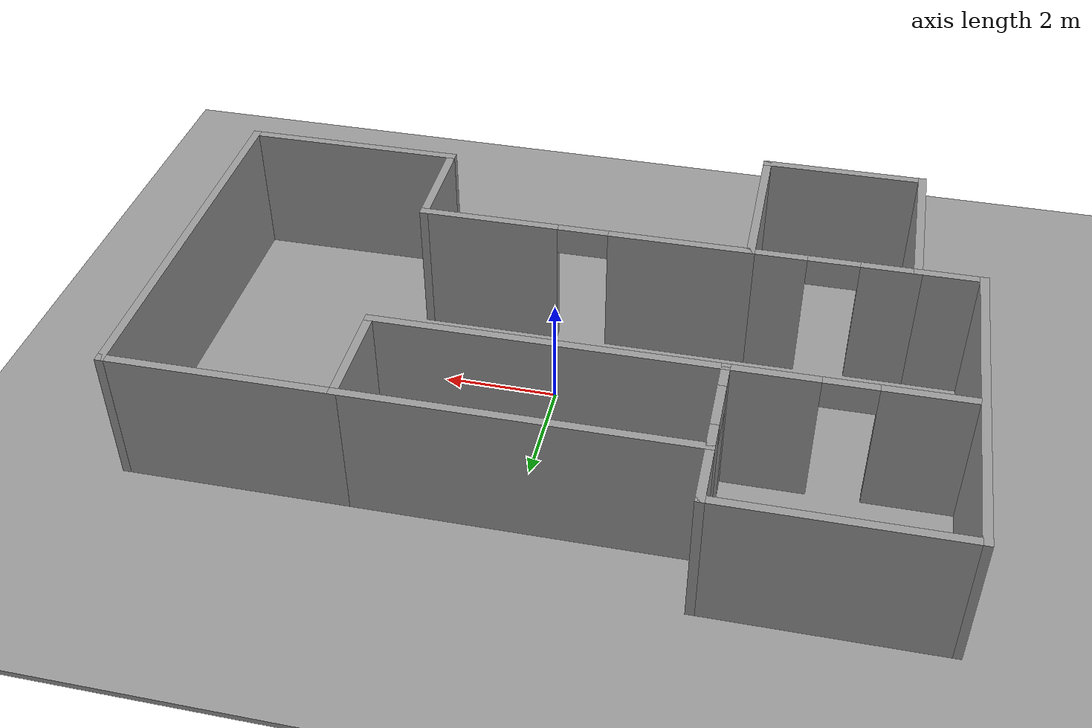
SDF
<sdf version="1.6">
 <world name="default">
  <model name="ground_plane">
   <static>1</static>
   <link name="link">
    <collision name="collision">
     <geometry><plane><normal>0 0 1</normal><size>100 100</size></plane></geometry>
     <surface><friction><ode><mu>100</mu><mu2>50</mu2></ode></friction></surface>
    </collision>
    <visual name="visual">
     <cast_shadows>0</cast_shadows>
     <geometry><plane><normal>0 0 1</normal><size>100 100</size></plane></geometry>
     <material>
      <script><uri>file://media/materials/scripts/gazebo.material</uri><name>Gazebo/Grey</name></script>
     </material>
    </visual>
   </link>
  </model>
  <light name="sun" type="directional">
   <pose>0 0 10 0 -0 0</pose>
   <diffuse>0.8 0.8 0.8 1</diffuse>
   <specular>0.2 0.2 0.2 1</specular>
   <attenuation>
    <range>1000</range>
    <constant>0.9</constant>
    <linear>0.01</linear>
    <quadratic>0.001</quadratic>
   </attenuation>
   <direction>-0.5 0.1 -0.9</direction>
  </light>
  <gravity>0 0 -9.8</gravity>
  <magnetic_field>6e-06 2.3e-05 -4.2e-05</magnetic_field>
  <atmosphere type="adiabatic"/>
  <physics name="default_physics" default="0" type="ode">
   <max_step_size>0.001</max_step_size>
   <real_time_factor>1</real_time_factor>
   <real_time_update_rate>1000</real_time_update_rate>
  </physics>
  <scene><ambient>0.4 0.4 0.4 1</ambient><background>0.7 0.7 0.7 1</background><shadows>1</shadows></scene>
  <spherical_coordinates>
   <surface_model>EARTH_WGS84</surface_model>
   <latitude_deg>0</latitude_deg>
   <longitude_deg>0</longitude_deg>
   <elevation>0</elevation>
   <heading_deg>0</heading_deg>
  </spherical_coordinates>
  <model name="base">
   <pose>-0.21186 -0.010356 0 0 -0 0.007751</pose>
   <link name="Wall_10">
    <collision name="Wall_10_Collision">
     <geometry><box><size>4 0.15 2.5</size></box></geometry>
     <pose>0 0 1.25 0 -0 0</pose>
    </collision>
    <visual name="Wall_10_Visual">
     <pose>0 0 1.25 0 -0 0</pose>
     <geometry><box><size>4 0.15 2.5</size></box></geometry>
     <material>
      <script><uri>file://media/materials/scripts/gazebo.material</uri><name>Gazebo/Grey</name></script>
      <ambient>1 1 1 1</ambient>
     </material>
     <meta><layer>0</layer></meta>
    </visual>
    <pose>4.92011 3.375 0 0 -0 3.14159</pose>
   </link>
   <link name="Wall_11">
    <collision name="Wall_11_Collision">
     <geometry><box><size>2 0.15 2.5</size></box></geometry>
     <pose>0 0 1.25 0 -0 0</pose>
    </collision>
    <visual name="Wall_11_Visual">
     <pose>0 0 1.25 0 -0 0</pose>
     <geometry><box><size>2 0.15 2.5</size></box></geometry>
     <material>
      <script><uri>file://media/materials/scripts/gazebo.material</uri><name>Gazebo/Grey</name></script>
      <ambient>1 1 1 1</ambient>
     </material>
     <meta><layer>0</layer></meta>
    </visual>
    <pose>2.99511 2.45 0 0 0 -1.5708</pose>
   </link>
   <link name="Wall_12">
    <collision name="Wall_12_Collision">
     <geometry><box><size>6 0.15 2.5</size></box></geometry>
     <pose>0 0 1.25 0 -0 0</pose>
    </collision>
    <visual name="Wall_12_Visual">
     <pose>0 0 1.25 0 -0 0</pose>
     <geometry><box><size>6 0.15 2.5</size></box></geometry>
     <material>
      <script><uri>file://media/materials/scripts/gazebo.material</uri><name>Gazebo/Grey</name></script>
      <ambient>1 1 1 1</ambient>
     </material>
     <meta><layer>0</layer></meta>
    </visual>
    <pose>0.070114 1.525 0 0 -0 3.14159</pose>
   </link>
   <link name="Wall_18">
    <collision name="Wall_18_Collision">
     <geometry><box><size>2 0.15 2.5</size></box></geometry>
     <pose>0 0 1.25 0 -0 0</pose>
    </collision>
    <visual name="Wall_18_Visual">
     <pose>0 0 1.25 0 -0 0</pose>
     <geometry><box><size>2 0.15 2.5</size></box></geometry>
     <material>
      <script><uri>file://media/materials/scripts/gazebo.material</uri><name>Gazebo/Grey</name></script>
      <ambient>1 1 1 1</ambient>
     </material>
     <meta><layer>0</layer></meta>
    </visual>
    <pose>2.95489 -2.55 0 0 -0 1.5708</pose>
   </link>
   <link name="Wall_19">
    <pose>0.029886 -1.625 0 0 -0 3.14159</pose>
    <visual name="Wall_19_Visual_0">
     <pose>-1.73932 0 1.25 0 -0 0</pose>
     <geometry><box><size>2.52135 0.15 2.5</size></box></geometry>
     <material>
      <script><uri>file://media/materials/scripts/gazebo.material</uri><name>Gazebo/Grey</name></script>
      <ambient>1 1 1 1</ambient>
     </material>
     <meta><layer>0</layer></meta>
    </visual>
    <collision name="Wall_19_Collision_0">
     <geometry><box><size>2.52135 0.15 2.5</size></box></geometry>
     <pose>-1.73932 0 1.25 0 -0 0</pose>
    </collision>
    <visual name="Wall_19_Visual_1">
     <pose>1.71068 0 1.25 0 -0 0</pose>
     <geometry><box><size>2.57865 0.15 2.5</size></box></geometry>
     <material>
      <script><uri>file://media/materials/scripts/gazebo.material</uri><name>Gazebo/Grey</name></script>
      <ambient>1 1 1 1</ambient>
     </material>
     <meta><layer>0</layer></meta>
    </visual>
    <collision name="Wall_19_Collision_1">
     <geometry><box><size>2.57865 0.15 2.5</size></box></geometry>
     <pose>1.71068 0 1.25 0 -0 0</pose>
    </collision>
    <visual name="Wall_19_Visual_2">
     <pose>-0.028646 0 2.25 0 -0 0</pose>
     <geometry><box><size>0.9 0.15 0.5</size></box></geometry>
     <material>
      <script><uri>file://media/materials/scripts/gazebo.material</uri><name>Gazebo/Grey</name></script>
      <ambient>1 1 1 1</ambient>
     </material>
     <meta><layer>0</layer></meta>
    </visual>
    <collision name="Wall_19_Collision_2">
     <geometry><box><size>0.9 0.15 0.5</size></box></geometry>
     <pose>-0.028646 0 2.25 0 -0 0</pose>
    </collision>
   </link>
   <link name="Wall_20">
    <collision name="Wall_20_Collision">
     <geometry><box><size>3 0.15 2.5</size></box></geometry>
     <pose>0 0 1.25 0 -0 0</pose>
    </collision>
    <visual name="Wall_20_Visual">
     <pose>0 0 1.25 0 -0 0</pose>
     <geometry><box><size>3 0.15 2.5</size></box></geometry>
     <material>
      <script><uri>file://media/materials/scripts/gazebo.material</uri><name>Gazebo/Grey</name></script>
      <ambient>1 1 1 1</ambient>
     </material>
     <meta><layer>0</layer></meta>
    </visual>
    <pose>-2.89511 -3.05 0 0 0 -1.5708</pose>
   </link>
   <link name="Wall_21">
    <collision name="Wall_21_Collision">
     <geometry><box><size>3 0.15 2.5</size></box></geometry>
     <pose>0 0 1.25 0 -0 0</pose>
    </collision>
    <visual name="Wall_21_Visual">
     <pose>0 0 1.25 0 -0 0</pose>
     <geometry><box><size>3 0.15 2.5</size></box></geometry>
     <material>
      <script><uri>file://media/materials/scripts/gazebo.material</uri><name>Gazebo/Grey</name></script>
      <ambient>1 1 1 1</ambient>
     </material>
     <meta><layer>0</layer></meta>
    </visual>
    <pose>-4.32011 -4.475 0 0 -0 3.14159</pose>
   </link>
   <link name="Wall_22">
    <collision name="Wall_22_Collision">
     <geometry><box><size>3 0.15 2.5</size></box></geometry>
     <pose>0 0 1.25 0 -0 0</pose>
    </collision>
    <visual name="Wall_22_Visual">
     <pose>0 0 1.25 0 -0 0</pose>
     <geometry><box><size>3 0.15 2.5</size></box></geometry>
     <material>
      <script><uri>file://media/materials/scripts/gazebo.material</uri><name>Gazebo/Grey</name></script>
      <ambient>1 1 1 1</ambient>
     </material>
     <meta><layer>0</layer></meta>
    </visual>
    <pose>-5.74511 -3.05 0 0 -0 1.5708</pose>
   </link>
   <link name="Wall_23">
    <collision name="Wall_23_Collision">
     <geometry><box><size>1.25 0.15 2.5</size></box></geometry>
     <pose>0 0 1.25 0 -0 0</pose>
    </collision>
    <visual name="Wall_23_Visual">
     <pose>0 0 1.25 0 -0 0</pose>
     <geometry><box><size>1.25 0.15 2.5</size></box></geometry>
     <material>
      <script><uri>file://media/materials/scripts/gazebo.material</uri><name>Gazebo/Grey</name></script>
      <ambient>1 1 1 1</ambient>
     </material>
     <meta><layer>0</layer></meta>
    </visual>
    <pose>-6.29511 -1.625 0 0 -0 3.14159</pose>
   </link>
   <link name="Wall_24">
    <collision name="Wall_24_Collision">
     <geometry><box><size>6.25 0.15 2.5</size></box></geometry>
     <pose>0 0 1.25 0 -0 0</pose>
    </collision>
    <visual name="Wall_24_Visual">
     <pose>0 0 1.25 0 -0 0</pose>
     <geometry><box><size>6.25 0.15 2.5</size></box></geometry>
     <material>
      <script><uri>file://media/materials/scripts/gazebo.material</uri><name>Gazebo/Grey</name></script>
      <ambient>1 1 1 1</ambient>
     </material>
     <meta><layer>0</layer></meta>
    </visual>
    <pose>-6.84511 1.425 0 0 -0 1.5708</pose>
   </link>
   <link name="Wall_28">
    <pose>-4.32011 -1.625 0 0 -0 0</pose>
    <visual name="Wall_28_Visual_0">
     <pose>-0.978057 0 1.25 0 -0 0</pose>
     <geometry><box><size>1.04389 0.15 2.5</size></box></geometry>
     <material>
      <script><uri>file://media/materials/scripts/gazebo.material</uri><name>Gazebo/Grey</name></script>
      <ambient>1 1 1 1</ambient>
     </material>
     <meta><layer>0</layer></meta>
    </visual>
    <collision name="Wall_28_Collision_0">
     <geometry><box><size>1.04389 0.15 2.5</size></box></geometry>
     <pose>-0.978057 0 1.25 0 -0 0</pose>
    </collision>
    <visual name="Wall_28_Visual_1">
     <pose>0.971943 0 1.25 0 -0 0</pose>
     <geometry><box><size>1.05611 0.15 2.5</size></box></geometry>
     <material>
      <script><uri>file://media/materials/scripts/gazebo.material</uri><name>Gazebo/Grey</name></script>
      <ambient>1 1 1 1</ambient>
     </material>
     <meta><layer>0</layer></meta>
    </visual>
    <collision name="Wall_28_Collision_1">
     <geometry><box><size>1.05611 0.15 2.5</size></box></geometry>
     <pose>0.971943 0 1.25 0 -0 0</pose>
    </collision>
    <visual name="Wall_28_Visual_2">
     <pose>-0.006113 0 2.25 0 -0 0</pose>
     <geometry><box><size>0.9 0.15 0.5</size></box></geometry>
     <material>
      <script><uri>file://media/materials/scripts/gazebo.material</uri><name>Gazebo/Grey</name></script>
      <ambient>1 1 1 1</ambient>
     </material>
     <meta><layer>0</layer></meta>
    </visual>
    <collision name="Wall_28_Collision_2">
     <geometry><box><size>0.9 0.15 0.5</size></box></geometry>
     <pose>-0.006113 0 2.25 0 -0 0</pose>
    </collision>
   </link>
   <link name="Wall_32">
    <pose>-2.85489 2.45 0 0 -0 1.5708</pose>
    <visual name="Wall_32_Visual_0">
     <pose>-0.730805 0 1.25 0 -0 0</pose>
     <geometry><box><size>0.53839 0.15 2.5</size></box></geometry>
     <material>
      <script><uri>file://media/materials/scripts/gazebo.material</uri><name>Gazebo/Grey</name></script>
      <ambient>1 1 1 1</ambient>
     </material>
     <meta><layer>0</layer></meta>
    </visual>
    <collision name="Wall_32_Collision_0">
     <geometry><box><size>0.53839 0.15 2.5</size></box></geometry>
     <pose>-0.730805 0 1.25 0 -0 0</pose>
    </collision>
    <visual name="Wall_32_Visual_1">
     <pose>0.719195 0 1.25 0 -0 0</pose>
     <geometry><box><size>0.56161 0.15 2.5</size></box></geometry>
     <material>
      <script><uri>file://media/materials/scripts/gazebo.material</uri><name>Gazebo/Grey</name></script>
      <ambient>1 1 1 1</ambient>
     </material>
     <meta><layer>0</layer></meta>
    </visual>
    <collision name="Wall_32_Collision_1">
     <geometry><box><size>0.56161 0.15 2.5</size></box></geometry>
     <pose>0.719195 0 1.25 0 -0 0</pose>
    </collision>
    <visual name="Wall_32_Visual_2">
     <pose>-0.01161 0 2.25 0 -0 0</pose>
     <geometry><box><size>0.9 0.15 0.5</size></box></geometry>
     <material>
      <script><uri>file://media/materials/scripts/gazebo.material</uri><name>Gazebo/Grey</name></script>
      <ambient>1 1 1 1</ambient>
     </material>
     <meta><layer>0</layer></meta>
    </visual>
    <collision name="Wall_32_Collision_2">
     <geometry><box><size>0.9 0.15 0.5</size></box></geometry>
     <pose>-0.01161 0 2.25 0 -0 0</pose>
    </collision>
   </link>
   <link name="Wall_33">
    <collision name="Wall_33_Collision">
     <geometry><box><size>6 0.15 2.5</size></box></geometry>
     <pose>0 0 1.25 0 -0 0</pose>
    </collision>
    <visual name="Wall_33_Visual">
     <pose>0 0 1.25 0 -0 0</pose>
     <geometry><box><size>6 0.15 2.5</size></box></geometry>
     <material>
      <script><uri>file://media/materials/scripts/gazebo.material</uri><name>Gazebo/Grey</name></script>
      <ambient>1 1 1 1</ambient>
     </material>
     <meta><layer>0</layer></meta>
    </visual>
    <pose>0.070114 3.375 0 0 -0 0</pose>
   </link>
   <link name="Wall_35">
    <collision name="Wall_35_Collision">
     <geometry><box><size>1.25 0.15 2.5</size></box></geometry>
     <pose>0 0 1.25 0 -0 0</pose>
    </collision>
    <visual name="Wall_35_Visual">
     <pose>0 0 1.25 0 -0 0</pose>
     <geometry><box><size>1.25 0.15 2.5</size></box></geometry>
     <material>
      <script><uri>file://media/materials/scripts/gazebo.material</uri><name>Gazebo/Grey</name></script>
      <ambient>1 1 1 1</ambient>
     </material>
     <meta><layer>0</layer></meta>
    </visual>
    <pose>-2.85489 3.925 0 0 -0 1.5708</pose>
   </link>
   <link name="Wall_36">
    <collision name="Wall_36_Collision">
     <geometry><box><size>4 0.15 2.5</size></box></geometry>
     <pose>0 0 1.25 0 -0 0</pose>
    </collision>
    <visual name="Wall_36_Visual">
     <pose>0 0 1.25 0 -0 0</pose>
     <geometry><box><size>4 0.15 2.5</size></box></geometry>
     <material>
      <script><uri>file://media/materials/scripts/gazebo.material</uri><name>Gazebo/Grey</name></script>
      <ambient>1 1 1 1</ambient>
     </material>
     <meta><layer>0</layer></meta>
    </visual>
    <pose>-4.77989 4.475 0 0 -0 3.14159</pose>
   </link>
   <link name="Wall_39">
    <pose>-4.77989 1.525 0 0 -0 3.14159</pose>
    <visual name="Wall_39_Visual_0">
     <pose>-1.21047 0 1.25 0 -0 0</pose>
     <geometry><box><size>1.57907 0.15 2.5</size></box></geometry>
     <material>
      <script><uri>file://media/materials/scripts/gazebo.material</uri><name>Gazebo/Grey</name></script>
      <ambient>1 1 1 1</ambient>
     </material>
     <meta><layer>0</layer></meta>
    </visual>
    <collision name="Wall_39_Collision_0">
     <geometry><box><size>1.57907 0.15 2.5</size></box></geometry>
     <pose>-1.21047 0 1.25 0 -0 0</pose>
    </collision>
    <visual name="Wall_39_Visual_1">
     <pose>1.23953 0 1.25 0 -0 0</pose>
     <geometry><box><size>1.52093 0.15 2.5</size></box></geometry>
     <material>
      <script><uri>file://media/materials/scripts/gazebo.material</uri><name>Gazebo/Grey</name></script>
      <ambient>1 1 1 1</ambient>
     </material>
     <meta><layer>0</layer></meta>
    </visual>
    <collision name="Wall_39_Collision_1">
     <geometry><box><size>1.52093 0.15 2.5</size></box></geometry>
     <pose>1.23953 0 1.25 0 -0 0</pose>
    </collision>
    <visual name="Wall_39_Visual_2">
     <pose>0.029066 0 2.25 0 -0 0</pose>
     <geometry><box><size>0.9 0.15 0.5</size></box></geometry>
     <material>
      <script><uri>file://media/materials/scripts/gazebo.material</uri><name>Gazebo/Grey</name></script>
      <ambient>1 1 1 1</ambient>
     </material>
     <meta><layer>0</layer></meta>
    </visual>
    <collision name="Wall_39_Collision_2">
     <geometry><box><size>0.9 0.15 0.5</size></box></geometry>
     <pose>0.029066 0 2.25 0 -0 0</pose>
    </collision>
   </link>
   <link name="Wall_8">
    <collision name="Wall_8_Collision">
     <geometry><box><size>4.04023 0.15 2.5</size></box></geometry>
     <pose>0 0 1.25 0 -0 0</pose>
    </collision>
    <visual name="Wall_8_Visual">
     <pose>0 0 1.25 0 -0 0</pose>
     <geometry><box><size>4.04023 0.15 2.5</size></box></geometry>
     <material>
      <script><uri>file://media/materials/scripts/gazebo.material</uri><name>Gazebo/Grey</name></script>
      <ambient>1 1 1 1</ambient>
     </material>
     <meta><layer>0</layer></meta>
    </visual>
    <pose>4.9 -3.475 0 0 -0 0</pose>
   </link>
   <link name="Wall_9">
    <collision name="Wall_9_Collision">
     <geometry><box><size>7 0.15 2.5</size></box></geometry>
     <pose>0 0 1.25 0 -0 0</pose>
    </collision>
    <visual name="Wall_9_Visual">
     <pose>0 0 1.25 0 -0 0</pose>
     <geometry><box><size>7 0.15 2.5</size></box></geometry>
     <material>
      <script><uri>file://media/materials/scripts/gazebo.material</uri><name>Gazebo/Grey</name></script>
      <ambient>1 1 1 1</ambient>
     </material>
     <meta><layer>0</layer></meta>
    </visual>
    <pose>6.84511 -0.05 0 0 -0 1.5708</pose>
   </link>
   <static>1</static>
  </model>
  <model name="ground_plane_0">
   <static>1</static>
   <link name="link">
    <collision name="collision">
     <geometry><plane><normal>0 0 1</normal><size>100 100</size></plane></geometry>
     <surface><friction><ode><mu>100</mu><mu2>50</mu2></ode></friction></surface>
    </collision>
    <visual name="visual">
     <cast_shadows>0</cast_shadows>
     <geometry><plane><normal>0 0 1</normal><size>100 100</size></plane></geometry>
     <material>
      <script><uri>file://media/materials/scripts/gazebo.material</uri><name>Gazebo/Grey</name></script>
     </material>
    </visual>
   </link>
   <pose>6.88082 -0.925256 0 0 -0 0</pose>
  </model>
  <plugin filename="libcollision_map_creator.so" name="collision_map_creator"/>
 </world>
</sdf>
